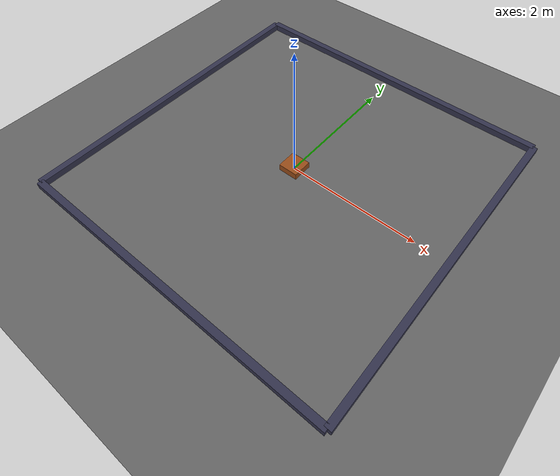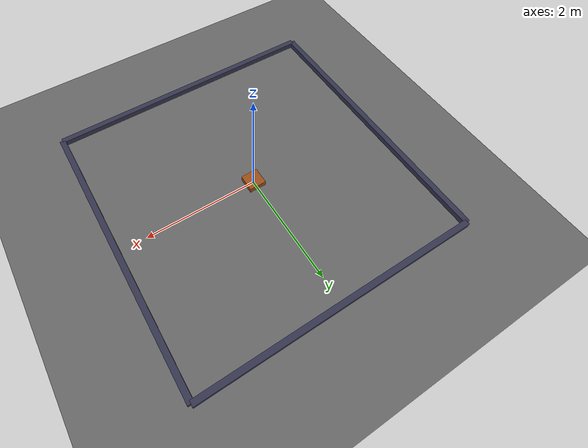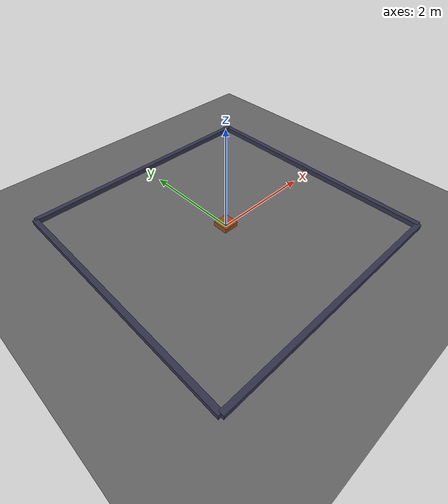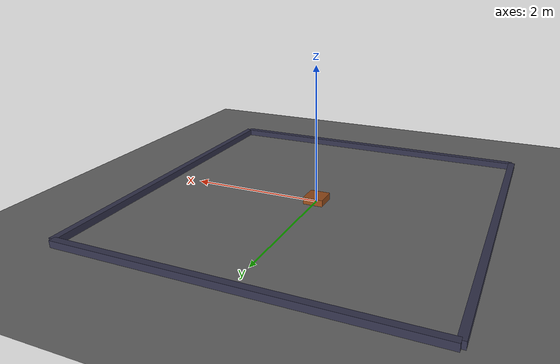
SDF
<?xml version="1.0" encoding="UTF-8"?>
<sdf version="1.6">
  <world name="square_arena">
    <gravity>0 0 -9.81</gravity>

    <!-- Floor (visual only) -->
    <model name="floor">
      <static>1</static>
      <pose>0 0 0 0 0 0</pose>
      <link name="link">
        <visual name="visual">
          <geometry>
            <plane>
              <normal>0 0 1</normal>
              <size>10 10</size>
            </plane>
          </geometry>
          <material>
            <ambient>0.4 0.4 0.4 1</ambient>
            <diffuse>0.4 0.4 0.4 1</diffuse>
          </material>
        </visual>
      </link>
    </model>

    <!-- Walls (5m x 5m arena, 0.3m inner obstacle) -->
    <model name="walls">
      <static>1</static>
      <pose>0 0 0 0 0 0</pose>
      <link name="link">

        <!-- North wall -->
        <collision name="north">
          <pose>0 2.5 0.05 0 0 0</pose>
          <geometry>
            <box>
              <size>5.0 0.1 0.1</size>
            </box>
          </geometry>
        </collision>
        <visual name="north_visual">
          <pose>0 2.5 0.05 0 0 0</pose>
          <geometry>
            <box>
              <size>5.0 0.1 0.1</size>
            </box>
          </geometry>
          <material>
            <ambient>0.2 0.2 0.3 1</ambient>
            <diffuse>0.2 0.2 0.3 1</diffuse>
          </material>
        </visual>

        <!-- South wall -->
        <collision name="south">
          <pose>0 -2.5 0.05 0 0 0</pose>
          <geometry>
            <box>
              <size>5.0 0.1 0.1</size>
            </box>
          </geometry>
        </collision>
        <visual name="south_visual">
          <pose>0 -2.5 0.05 0 0 0</pose>
          <geometry>
            <box>
              <size>5.0 0.1 0.1</size>
            </box>
          </geometry>
          <material>
            <ambient>0.2 0.2 0.3 1</ambient>
            <diffuse>0.2 0.2 0.3 1</diffuse>
          </material>
        </visual>

        <!-- East wall -->
        <collision name="east">
          <pose>2.5 0 0.05 0 0 0</pose>
          <geometry>
            <box>
              <size>0.1 5.0 0.1</size>
            </box>
          </geometry>
        </collision>
        <visual name="east_visual">
          <pose>2.5 0 0.05 0 0 0</pose>
          <geometry>
            <box>
              <size>0.1 5.0 0.1</size>
            </box>
          </geometry>
          <material>
            <ambient>0.2 0.2 0.3 1</ambient>
            <diffuse>0.2 0.2 0.3 1</diffuse>
          </material>
        </visual>

        <!-- West wall -->
        <collision name="west">
          <pose>-2.5 0 0.05 0 0 0</pose>
          <geometry>
            <box>
              <size>0.1 5.0 0.1</size>
            </box>
          </geometry>
        </collision>
        <visual name="west_visual">
          <pose>-2.5 0 0.05 0 0 0</pose>
          <geometry>
            <box>
              <size>0.1 5.0 0.1</size>
            </box>
          </geometry>
          <material>
            <ambient>0.2 0.2 0.3 1</ambient>
            <diffuse>0.2 0.2 0.3 1</diffuse>
          </material>
        </visual>

        <!-- Inner Obstacle (0.3m x 0.3m) -->
        <collision name="inner">
          <pose>0 0 0.05 0 0 0</pose>
          <geometry>
            <box>
              <size>0.3 0.3 0.1</size>
            </box>
          </geometry>
        </collision>
        <visual name="inner_visual">
          <pose>0 0 0.05 0 0 0</pose>
          <geometry>
            <box>
              <size>0.3 0.3 0.1</size>
            </box>
          </geometry>
          <material>
            <ambient>0.6 0.3 0.1 1</ambient>
            <diffuse>0.6 0.3 0.1 1</diffuse>
          </material>
        </visual>

      </link>
    </model>
  </world>
</sdf>
